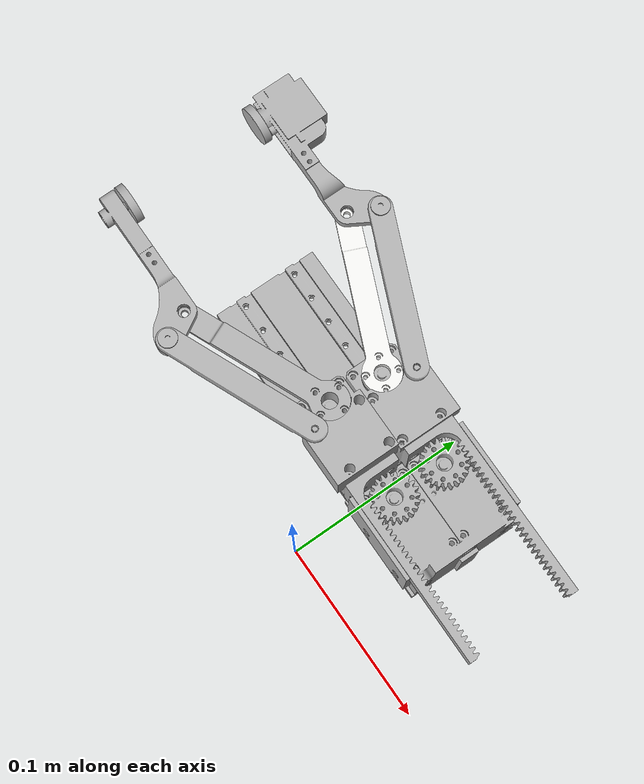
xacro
<?xml version="1.0" ?>
<robot name="cobotta"
  xmlns:xacro="http://www.ros.org/wiki/xacro">

  <xacro:arg name="base_type" default="none"/>
  <xacro:property name="base_type" value="$(arg base_type)" />

  <xacro:property name="joint_damping" value="0.001" />
  <xacro:property name="joint_friction" value="0.61" />

  <!--hand_stiffness to adjust mass, so force from other joint will not disturb other joints-->
  <!--regarding there are some objects that has no inertia value-->
  <xacro:property name="hand_stiffness" value="10" />

  <xacro:include filename="$(find gripper_ntlab_description)/urdf/materials.xacro" />
  <xacro:include filename="$(find gripper_ntlab_description)/urdf/gripper_ntlab.trans" />
  <xacro:include filename="$(find gripper_ntlab_description)/urdf/gripper_ntlab.gazebo" />

  <xacro:macro name="inertia_macro" params="radius height mass *origin">
    <inertial>
      <mass value="${mass}" />
      <xacro:insert_block name="origin" />
      <inertia ixx="${((1 / 4) * mass * radius * radius) + ((1 / 12) * mass * height * height)}" ixy="0.0" ixz="0.0" iyy="${((1 / 4) * mass * radius * radius) + ((1 / 12) * mass * height * height)}" iyz="0.0" izz="${(1 / 2) * mass * radius * radius}" />
    </inertial>
  </xacro:macro>

  <physics type="ode">
    <gravity xyz="0 0 -9.8"/>
    <ode>
      <constraints cfm="0.0" erp="0.2" contact_max_correcting_vel="0.1" contact_surface_layer="0.001"/>
    </ode>
  </physics>

  <!-- Connect J6(EoE of Cobotta) to the base link of gripper-->
  <xacro:if value="${base_type == 'cobotta'}">
    <joint name="joint_gripper_base" type="fixed">
      <parent link="J6"/>
      <child link="gripper_base_link"/>
      <origin rpy="0.000000 1.5708 -1.5708" xyz="-0.060000 0.060000 0.1350000"/>
    </joint>
  </xacro:if>

  <xacro:if value="${base_type == 'none'}">
    <link name="base_link">
    </link>
    <joint name="base_fixed_joint" type="fixed">
      <parent link="base_link"/>
      <child link="gripper_base_link"/>
    </joint>
  </xacro:if>

  <link name="gripper_base_link">
    <xacro:inertia_macro radius="0.0702" height="0.1749" mass="${0.2458664564570096*hand_stiffness}">
      <origin rpy="0 0 0" xyz="0.007413303848346014 0.06187243424866449 0.052543473427993696"/>
    </xacro:inertia_macro>
    <visual>
      <origin rpy="0 0 0" xyz="0 0 0"/>
      <geometry>
        <mesh filename="package://gripper_ntlab_description/meshes/base_link.stl" scale="0.001 0.001 0.001"/>
      </geometry>
      <material name="silver_default"/>
    </visual>
    <collision>
      <origin rpy="0 0 0" xyz="0 0 0"/>
      <geometry>
        <mesh filename="package://gripper_ntlab_description/meshes/base_link.stl" scale="0.001 0.001 0.001"/>
      </geometry>
    </collision>
  </link>

  <link name="r_rod_a_1">
    <xacro:inertia_macro radius="0.03" height="0.0958" mass="${0.010269254213715277*hand_stiffness}">
      <origin rpy="0 0 0" xyz="-0.020217705524359718 -0.008692491778806266 0.011597193240543216"/>
    </xacro:inertia_macro>
    <visual>
      <origin rpy="0 0 0" xyz="0.0377 -0.047281 -0.081235"/>
      <geometry>
        <mesh filename="package://gripper_ntlab_description/meshes/r_rod_a_1.stl" scale="0.001 0.001 0.001"/>
      </geometry>
      <material name="silver_default"/>
    </visual>
    <collision>
      <origin rpy="0 0 0" xyz="0.0377 -0.047281 -0.081235"/>
      <geometry>
        <mesh filename="package://gripper_ntlab_description/meshes/r_rod_a_1.stl" scale="0.001 0.001 0.001"/>
      </geometry>
    </collision>
  </link>

  <link name="r_finger_1">
    <inertial>
      <origin rpy="0 0 0" xyz="-0.024119579980588904 -0.001488477039536324 -0.0005708329568233222"/>
      <mass value="0.007495062841070901"/>
      <inertia ixx="0.0" ixy="0.0" ixz="-0.0" iyy="0.0" iyz="0.0" izz="0.0"/>
    </inertial>
    <visual>
      <origin rpy="0 0 0" xyz="0.111195 -0.015682 -0.096135"/>
      <geometry>
        <mesh filename="package://gripper_ntlab_description/meshes/r_finger_1.stl" scale="0.001 0.001 0.001"/>
      </geometry>
      <material name="silver_default"/>
    </visual>
    <collision>
      <origin rpy="0 0 0" xyz="0.111195 -0.015682 -0.096135"/>
      <geometry>
        <mesh filename="package://gripper_ntlab_description/meshes/r_finger_1.stl" scale="0.001 0.001 0.001"/>
      </geometry>
    </collision>
  </link>

  <link name="r_roll_1">
    <inertial>
      <origin rpy="0 0 0" xyz="9.593091910869989e-06 0.0027691787390397987 -7.722870663945391e-07"/>
      <mass value="0.00146239508937493"/>
      <inertia ixx="0.0" ixy="0.0" ixz="-0.0" iyy="0.0" iyz="0.0" izz="0.0"/>
    </inertial>
    <visual>
      <origin rpy="0 0 0" xyz="0.172173 -0.021897 -0.092985"/>
      <geometry>
        <mesh filename="package://gripper_ntlab_description/meshes/r_roll_1.stl" scale="0.001 0.001 0.001"/>
      </geometry>
      <material name="silver_default"/>
    </visual>
    <collision>
      <origin rpy="0 0 0" xyz="0.172173 -0.021897 -0.092985"/>
      <geometry>
        <mesh filename="package://gripper_ntlab_description/meshes/r_roll_1.stl" scale="0.001 0.001 0.001"/>
      </geometry>
    </collision>
  </link>

  <link name="r_pinion_1">
    <inertial>
      <origin rpy="0 0 0" xyz="1.5015478240128222e-07 1.5928290141714596e-07 -3.6802972981642146e-07"/>
      <mass value="0.003623475341770341"/>
      <inertia ixx="0.0" ixy="-0.0" ixz="0.0" iyy="0.0" iyz="0.0" izz="0.0"/>
    </inertial>
    <visual>
      <origin rpy="0 0 0" xyz="-0.014852 -0.047596 -0.080135"/>
      <geometry>
        <mesh filename="package://gripper_ntlab_description/meshes/r_pinion_1.stl" scale="0.001 0.001 0.001"/>
      </geometry>
      <material name="silver_default"/>
    </visual>
    <collision>
      <origin rpy="0 0 0" xyz="-0.014852 -0.047596 -0.080135"/>
      <geometry>
        <mesh filename="package://gripper_ntlab_description/meshes/r_pinion_1.stl" scale="0.001 0.001 0.001"/>
      </geometry>
    </collision>
  </link>

  <link name="l_pinion_1">
    <inertial>
      <origin rpy="0 0 0" xyz="4.768988167459798e-07 -1.730447465875251e-08 -3.702835613822453e-07"/>
      <mass value="0.003623475341770341"/>
      <inertia ixx="0.0" ixy="0.0" ixz="0.0" iyy="0.0" iyz="0.0" izz="0.0"/>
    </inertial>
    <visual>
      <origin rpy="0 0 0" xyz="-0.014952 -0.076096 -0.080135"/>
      <geometry>
        <mesh filename="package://gripper_ntlab_description/meshes/l_pinion_1.stl" scale="0.001 0.001 0.001"/>
      </geometry>
      <material name="silver_default"/>
    </visual>
    <collision>
      <origin rpy="0 0 0" xyz="-0.014952 -0.076096 -0.080135"/>
      <geometry>
        <mesh filename="package://gripper_ntlab_description/meshes/l_pinion_1.stl" scale="0.001 0.001 0.001"/>
      </geometry>
    </collision>
  </link>

  <link name="l_hand_1">
    <inertial>
      <origin rpy="0 0 0" xyz="0.07733247742865593 0.0010803267326356947 0.02315602960205109"/>
      <mass value="0.10430872211507385"/>
      <inertia ixx="2.7e-05" ixy="-5e-06" ixz="-9e-06" iyy="7.2e-05" iyz="-2e-06" izz="6e-05"/>
    </inertial>
    <visual>
      <origin rpy="0 0 0" xyz="0.095795 -0.076986 -0.041735"/>
      <geometry>
        <mesh filename="package://gripper_ntlab_description/meshes/l_hand_1.stl" scale="0.001 0.001 0.001"/>
      </geometry>
      <material name="silver_default"/>
    </visual>
    <collision>
      <origin rpy="0 0 0" xyz="0.095795 -0.076986 -0.041735"/>
      <geometry>
        <mesh filename="package://gripper_ntlab_description/meshes/l_hand_1.stl" scale="0.001 0.001 0.001"/>
      </geometry>
    </collision>
  </link>

  <link name="l_rod_a_1">
    <xacro:inertia_macro radius="0.03" height="0.0958" mass="${0.006812361578477563*hand_stiffness}">
      <origin rpy="0 0 0" xyz="-0.03054027136832653 0.012965713261783293 -0.0001934454667376767"/>
    </xacro:inertia_macro>
    <visual>
      <origin rpy="0 0 0" xyz="0.036595 -0.076777 -0.08431"/>
      <geometry>
        <mesh filename="package://gripper_ntlab_description/meshes/l_rod_a_1.stl" scale="0.001 0.001 0.001"/>
      </geometry>
      <material name="abs_white"/>
    </visual>
    <collision>
      <origin rpy="0 0 0" xyz="0.036595 -0.076777 -0.08431"/>
      <geometry>
        <mesh filename="package://gripper_ntlab_description/meshes/l_rod_a_1.stl" scale="0.001 0.001 0.001"/>
      </geometry>
    </collision>
  </link>

  <link name="r_rod_b_1">
    <xacro:inertia_macro radius="0.03" height="0.091" mass="${0.006019153293969891*hand_stiffness}">
      <origin rpy="0 0 0" xyz="-0.03546590189328162 -0.015248493044195312 0.0005366330930280383"/>
    </xacro:inertia_macro>
    <visual>
      <origin rpy="0 0 0" xyz="0.029748 -0.033397 -0.101735"/>
      <geometry>
        <mesh filename="package://gripper_ntlab_description/meshes/r_rod_b_1.stl" scale="0.001 0.001 0.001"/>
      </geometry>
      <material name="silver_default"/>
    </visual>
    <collision>
      <origin rpy="0 0 0" xyz="0.029748 -0.033397 -0.101735"/>
      <geometry>
        <mesh filename="package://gripper_ntlab_description/meshes/r_rod_b_1.stl" scale="0.001 0.001 0.001"/>
      </geometry>
    </collision>
  </link>

  <link name="l_roll_1">
    <inertial>
      <origin rpy="0 0 0" xyz="-9.886936053443707e-06 -0.0027936159676818645 -5.458161498328451e-07"/>
      <mass value="0.0015592094271936565"/>
      <inertia ixx="0.0" ixy="0.0" ixz="0.0" iyy="0.0" iyz="-0.0" izz="0.0"/>
    </inertial>
    <visual>
      <origin rpy="0 0 0" xyz="0.169963 -0.09995 -0.09331"/>
      <geometry>
        <mesh filename="package://gripper_ntlab_description/meshes/l_roll_1.stl" scale="0.001 0.001 0.001"/>
      </geometry>
      <material name="silver_default"/>
    </visual>
    <collision>
      <origin rpy="0 0 0" xyz="0.169963 -0.09995 -0.09331"/>
      <geometry>
        <mesh filename="package://gripper_ntlab_description/meshes/l_roll_1.stl" scale="0.001 0.001 0.001"/>
      </geometry>
    </collision>
  </link>

  <link name="l_finger_1">
    <inertial>
      <origin rpy="0 0 0" xyz="-0.050733434663407684 0.005756198541935431 0.008468737035185164"/>
      <mass value="0.06168673097027164"/>
      <inertia ixx="0.0" ixy="0.0" ixz="0.0" iyy="0.0" iyz="0.0" izz="0.0"/>
    </inertial>
    <visual>
      <origin rpy="0 0 0" xyz="0.110234 -0.10804 -0.08456"/>
      <geometry>
        <mesh filename="package://gripper_ntlab_description/meshes/l_finger_1.stl" scale="0.001 0.001 0.001"/>
      </geometry>
      <material name="silver_default"/>
    </visual>
    <collision>
      <origin rpy="0 0 0" xyz="0.110234 -0.10804 -0.08456"/>
      <geometry>
        <mesh filename="package://gripper_ntlab_description/meshes/l_finger_1.stl" scale="0.001 0.001 0.001"/>
      </geometry>
    </collision>
  </link>

  <link name="l_rod_b_1">
    <xacro:inertia_macro radius="0.03" height="0.091" mass="${0.006019153293969891*hand_stiffness}">
      <origin rpy="0 0 0" xyz="-0.03553451754999422 0.015085419938293057 0.0008616330930139443"/>
    </xacro:inertia_macro>
    <visual>
      <origin rpy="0 0 0" xyz="0.028547 -0.090606 -0.089835"/>
      <geometry>
        <mesh filename="package://gripper_ntlab_description/meshes/l_rod_b_1.stl" scale="0.001 0.001 0.001"/>
      </geometry>
      <material name="silver_default"/>
    </visual>
    <collision>
      <origin rpy="0 0 0" xyz="0.028547 -0.090606 -0.089835"/>
      <geometry>
        <mesh filename="package://gripper_ntlab_description/meshes/l_rod_b_1.stl" scale="0.001 0.001 0.001"/>
      </geometry>
    </collision>
  </link>

  <link name="r_hand_1">
    <inertial>
      <origin rpy="0 0 0" xyz="0.031615247843182134 -0.0016727169016351878 0.026801126213624606"/>
      <mass value="0.11780240999045509"/>
      <inertia ixx="4.1e-05" ixy="6e-06" ixz="-1e-05" iyy="8.5e-05" iyz="3e-06" izz="6.2e-05"/>
    </inertial>
    <visual>
      <origin rpy="0 0 0" xyz="0.050899 -0.047328 -0.041735"/>
      <geometry>
        <mesh filename="package://gripper_ntlab_description/meshes/r_hand_1.stl" scale="0.001 0.001 0.001"/>
      </geometry>
      <material name="silver_default"/>
    </visual>
    <collision>
      <origin rpy="0 0 0" xyz="0.050899 -0.047328 -0.041735"/>
      <geometry>
        <mesh filename="package://gripper_ntlab_description/meshes/r_hand_1.stl" scale="0.001 0.001 0.001"/>
      </geometry>
    </collision>
  </link>

  <joint name="r_hand_rod_a" type="revolute">
    <origin rpy="0 0 0" xyz="0.013199 -4.7e-05 0.0395"/>
    <parent link="r_hand_1"/>
    <child link="r_rod_a_1"/>
    <axis xyz="-0.0 -0.0 -1.0"/>
    <limit velocity="${pi*0.1}" effort="1" lower="${-0.9}" upper="${1.3}" />
    <dynamics damping="${joint_damping}" friction="${joint_friction}" />
    <implicitSpringDamper>True</implicitSpringDamper>
    <springStiffness>True</springStiffness>
  </joint>

  <joint name="r_rod_a_finger" type="revolute">
    <origin rpy="0 0 0" xyz="-0.073495 -0.031599 0.0149"/>
    <parent link="r_rod_a_1"/>
    <child link="r_finger_1"/>
    <axis xyz="0.0 0.0 1.0"/>
    <limit velocity="${pi*0.1}" effort="1" lower="${-0.9}" upper="${1.3}" />
    <dynamics damping="${joint_damping}" friction="${joint_friction}" />
    <implicitSpringDamper>True</implicitSpringDamper>
    <springStiffness>True</springStiffness>
  </joint>
  <xacro:mimic_joint_plugin_gazebo name_prefix="r_rod_a_finger" parent_joint="r_hand_rod_a" mimic_joint="r_rod_a_finger" has_pid="false" multiplier="1.0" max_effort="1" />

  <joint name="r_finger_roll" type="revolute">
    <origin rpy="0 0 0" xyz="-0.060978 0.006215 -0.00315"/>
    <parent link="r_finger_1"/>
    <child link="r_roll_1"/>
    <axis xyz="-0.00352 -0.999994 0.0"/>
    <limit velocity="${pi*0.25}" effort="10.6" lower="${-0.45}" upper="${pi*0.5}" />
    <dynamics damping="${joint_damping}" friction="${joint_friction}" />
    <implicitSpringDamper>True</implicitSpringDamper>
    <springStiffness>True</springStiffness>
  </joint>
  <xacro:mimic_joint_plugin_gazebo name_prefix="r_finger_roll" parent_joint="l_finger_roll" mimic_joint="r_finger_roll" has_pid="false" multiplier="1.0" max_effort="10.6" />

  <joint name="r_base_hand_r" type="revolute">
    <origin rpy="0 0 0" xyz="0.014852 0.047596 0.080135"/>
    <parent link="gripper_base_link"/>
    <child link="r_pinion_1"/>
    <axis xyz="0.0 0.0 1.0"/>
    <limit velocity="${pi*0.25}" effort="10.6" lower="${-pi*3.0}" upper="${0.0}" />
    <dynamics damping="${joint_damping}" friction="${joint_friction}" />
    <implicitSpringDamper>True</implicitSpringDamper>
    <springStiffness>True</springStiffness>
  </joint>

  <joint name="l_base_hand_r" type="revolute">
    <origin rpy="0 0 0" xyz="0.014952 0.076096 0.080135"/>
    <parent link="gripper_base_link"/>
    <child link="l_pinion_1"/>
    <axis xyz="0.0 0.0 1.0"/>
    <limit velocity="${pi*0.25}" effort="10.6" lower="${0.0}" upper="${pi*3.0}" />
    <implicitSpringDamper>True</implicitSpringDamper>
    <springStiffness>True</springStiffness>
  </joint>

  <joint name="l_base_hand_s" type="prismatic">
    <origin rpy="0 0 0" xyz="-0.095795 0.076986 0.041735"/>
    <parent link="gripper_base_link"/>
    <child link="l_hand_1"/>
    <axis xyz="0.999994 -0.00352 -0.0"/>
    <limit effort="10" lower="-9.0" upper="1.0" velocity="${pi*0.5}"/>
    <dynamics damping="${joint_damping}" friction="${joint_friction}" />
  </joint>

  <joint name="l_hand_rod_a" type="revolute">
    <origin rpy="0 0 0" xyz="0.0592 -0.000209 0.042575"/>
    <parent link="l_hand_1"/>
    <child link="l_rod_a_1"/>
    <axis xyz="0.0 0.0 1.0"/>
    <limit velocity="${pi*0.1}" effort="1" lower="${-0.9}" upper="${1.3}" />
    <dynamics damping="${joint_damping}" friction="${joint_friction}" />
    <implicitSpringDamper>True</implicitSpringDamper>
    <springStiffness>True</springStiffness>
  </joint>

  <joint name="r_hand_rod_b" type="revolute">
    <origin rpy="0 0 0" xyz="0.021151 -0.013931 0.06"/>
    <parent link="r_hand_1"/>
    <child link="r_rod_b_1"/>
    <axis xyz="0.0 0.0 1.0"/>
    <limit velocity="${pi*0.1}" effort="1" lower="${-1.2}" upper="${2.0}" />
    <dynamics damping="${joint_damping}" friction="${joint_friction}" />
    <implicitSpringDamper>True</implicitSpringDamper>
    <springStiffness>True</springStiffness>
  </joint>
  <xacro:mimic_joint_plugin_gazebo name_prefix="r_hand_rod_b" parent_joint="r_hand_rod_a" mimic_joint="r_hand_rod_b" has_pid="false" multiplier="-1.0" max_effort="1" />

  <joint name="l_finger_roll" type="revolute">
    <origin rpy="0 0 0" xyz="-0.059729 -0.00809 0.00875"/>
    <parent link="l_finger_1"/>
    <child link="l_roll_1"/>
    <axis xyz="-0.00352 -0.999994 0.0"/>
    <limit velocity="${pi*0.25}" effort="10.6" lower="${-0.45}" upper="${pi*0.5}" />
    <dynamics damping="${joint_damping}" friction="${joint_friction}" />
    <implicitSpringDamper>True</implicitSpringDamper>
    <springStiffness>True</springStiffness>
  </joint>

  <joint name="l_rod_a_finger" type="revolute">
    <origin rpy="0 0 0" xyz="-0.073639 0.031263 0.00025"/>
    <parent link="l_rod_a_1"/>
    <child link="l_finger_1"/>
    <axis xyz="0.0 0.0 1.0"/>
    <limit velocity="${pi*0.1}" effort="1" lower="${-0.9}" upper="${1.3}" />
    <dynamics damping="${joint_damping}" friction="${joint_friction}" />
    <implicitSpringDamper>True</implicitSpringDamper>
    <springStiffness>True</springStiffness>
  </joint>
  <xacro:mimic_joint_plugin_gazebo name_prefix="l_rod_a_finger" parent_joint="l_hand_rod_a" mimic_joint="l_rod_a_finger" has_pid="false" multiplier="-1.0" max_effort="1" />

  <joint name="l_hand_rod_b" type="revolute">
    <origin rpy="0 0 0" xyz="0.067248 0.01362 0.0481"/>
    <parent link="l_hand_1"/>
    <child link="l_rod_b_1"/>
    <axis xyz="0.0 0.0 1.0"/>
    <limit velocity="${pi*0.1}" effort="1" lower="${-1.2}" upper="${2.0}" />
    <dynamics damping="${joint_damping}" friction="${joint_friction}" />
    <implicitSpringDamper>True</implicitSpringDamper>
    <springStiffness>True</springStiffness>
  </joint>
  <xacro:mimic_joint_plugin_gazebo name_prefix="l_hand_rod_b" parent_joint="l_hand_rod_a" mimic_joint="l_hand_rod_b" has_pid="false" multiplier="1.0" max_effort="1" />

  <joint name="r_base_hand_s" type="prismatic">
    <origin rpy="0 0 0" xyz="-0.050899 0.047328 0.041735"/>
    <parent link="gripper_base_link"/>
    <child link="r_hand_1"/>
    <axis xyz="0.999994 -0.00352 -0.0"/>
    <limit effort="10" lower="-9.0" upper="1.0" velocity="${pi*0.5}"/>
    <dynamics damping="${joint_damping}" friction="${joint_friction}" />
  </joint>

</robot>

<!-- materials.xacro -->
<robot name="cobotta"
  xmlns:xacro="http://www.ros.org/wiki/xacro">

  <material name="silver_default">
    <color rgba="0.700 0.700 0.700 1.000"/>
  </material>
  <material name="abs_white">
    <color rgba="0.9647058823529412 0.9647058823529412 0.9529411764705882 1.0"/>
  </material>

</robot>

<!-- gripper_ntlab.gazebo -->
<robot name="cobotta"
  xmlns:xacro="http://www.ros.org/wiki/xacro">

  <xacro:property name="body_color" value="Gazebo/DarkGrey" />
  <xacro:property name="hand_color" value="Gazebo/Grey" />
  <xacro:property name="rod_a_color" value="Gazebo/Silver" />
  <xacro:property name="rod_b_color" value="Gazebo/Red" />
  <xacro:property name="finger_color" value="Gazebo/DarkGrey" />
  <xacro:property name="roll_color" value="Gazebo/Silver" />
  <xacro:property name="pinion_color" value="Gazebo/Yellow" />

  <gazebo>
    <plugin filename="libgazebo_ros_control.so" name="control">
      <robotSimType>gazebo_ros_control/DefaultRobotHWSim</robotSimType>
      <legacyModeNS>true</legacyModeNS>
    </plugin>
  </gazebo>
  <gazebo reference="base_link">
    <material>${body_color}</material>
    <mu1>0.2</mu1>
    <mu2>0.2</mu2>
    <selfCollide>false</selfCollide>
    <maxContacts>10</maxContacts>
  </gazebo>

  <gazebo reference="r_rod_a_1">
    <material>${rod_a_color}</material>
    <selfCollide>true</selfCollide>
    <dampingFactor>0.001</dampingFactor>
  </gazebo>

  <gazebo reference="r_finger_1">
    <material>${finger_color}</material>
    <selfCollide>true</selfCollide>
    <dampingFactor>0.001</dampingFactor>
  </gazebo>

  <gazebo reference="r_roll_1">
    <material>${roll_color}</material>
    <selfCollide>true</selfCollide>
    <dampingFactor>0.01</dampingFactor>
  </gazebo>

  <gazebo reference="r_pinion_1">
    <material>${pinion_color}</material>
    <mu1>0.2</mu1>
    <mu2>0.2</mu2>
    <selfCollide>true</selfCollide>
  </gazebo>

  <gazebo reference="l_pinion_1">
    <material>${pinion_color}</material>
    <mu1>0.2</mu1>
    <mu2>0.2</mu2>
    <selfCollide>true</selfCollide>
  </gazebo>

  <gazebo reference="l_hand_1">
    <material>${hand_color}</material>
    <mu1>0.2</mu1>
    <mu2>0.2</mu2>
    <selfCollide>true</selfCollide>
  </gazebo>

  <gazebo reference="l_rod_a_1">
    <material>${rod_a_color}</material>
    <selfCollide>true</selfCollide>
    <dampingFactor>0.001</dampingFactor>
  </gazebo>

  <gazebo reference="r_rod_b_1">
    <material>${rod_b_color}</material>
    <selfCollide>true</selfCollide>
    <dampingFactor>0.001</dampingFactor>
  </gazebo>

  <gazebo reference="l_roll_1">
    <material>${roll_color}</material>
    <selfCollide>true</selfCollide>
    <dampingFactor>0.01</dampingFactor>
  </gazebo>

  <gazebo reference="l_finger_1">
    <material>${finger_color}</material>
    <selfCollide>true</selfCollide>
    <dampingFactor>0.001</dampingFactor>
  </gazebo>

  <gazebo reference="l_rod_b_1">
    <material>${rod_b_color}</material>
    <selfCollide>true</selfCollide>
    <dampingFactor>0.001</dampingFactor>
  </gazebo>

  <gazebo reference="r_hand_1">
    <material>${hand_color}</material>
    <mu1>0.2</mu1>
    <mu2>0.2</mu2>
    <selfCollide>true</selfCollide>
  </gazebo>

  <xacro:macro name="mimic_joint_plugin_gazebo" params="name_prefix parent_joint mimic_joint has_pid:=false multiplier:=1.0 offset:=0 sensitiveness:=0.0 max_effort:=1.0 robot_namespace:=''">
    <gazebo>
      <plugin name="${name_prefix}mimic_joint_plugin" filename="libroboticsgroup_upatras_gazebo_mimic_joint_plugin.so">
        <joint>${parent_joint}</joint>
        <mimicJoint>${mimic_joint}</mimicJoint>
        <xacro:if value="${has_pid}">          <!-- if set to true, PID parameters from "/gazebo_ros_control/pid_gains/${mimic_joint}" are loaded -->
          <hasPID />
        </xacro:if>
        <multiplier>${multiplier}</multiplier>
        <offset>${offset}</offset>
        <sensitiveness>${sensitiveness}</sensitiveness>        <!-- if absolute difference between setpoint and process value is below this threshold, do nothing; 0.0 = disable [rad] -->
        <maxEffort>${max_effort}</maxEffort>        <!-- only taken into account if has_pid:=true [Nm] -->
        <xacro:unless value="${robot_namespace == ''}">
          <robotNamespace>${robot_namespace}</robotNamespace>
        </xacro:unless>
      </plugin>
    </gazebo>
  </xacro:macro>

</robot>
